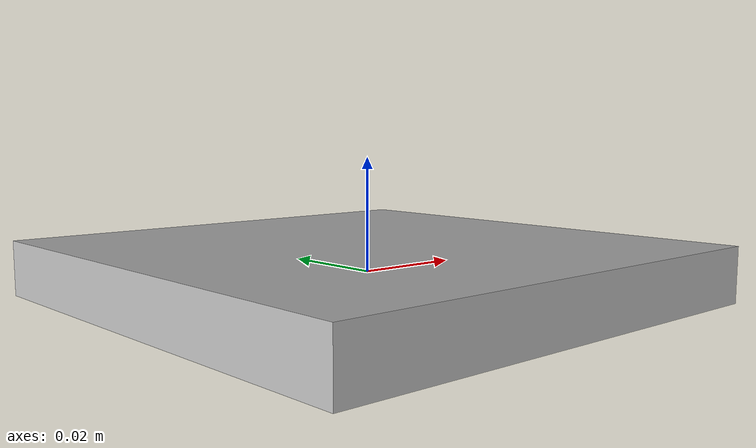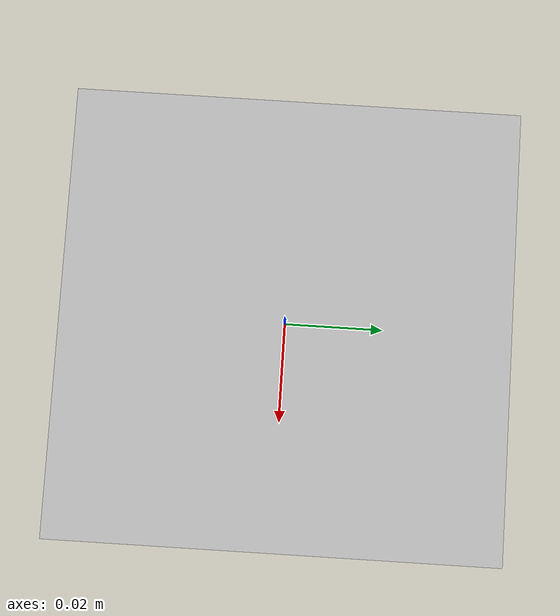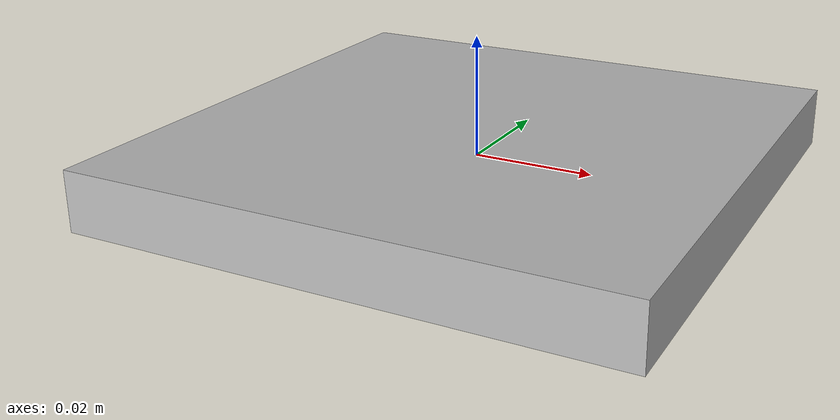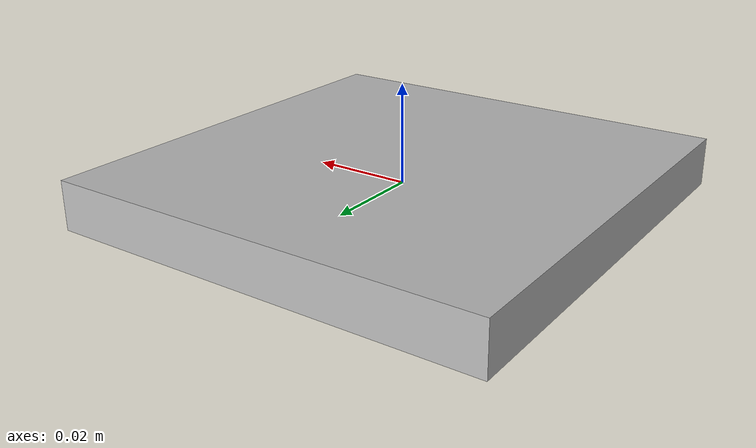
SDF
<?xml version='1.0'?>
<sdf version='1.5'>
  <model name='ar_tag3'>
    <static>true</static>
    <link name="tag3_link">

        <visual name="visual_ar_tag3">
        <geometry>
                <mesh>
                    <uri>model://AR_tag3/meshes/ar_tag3.dae</uri>
                </mesh>
            </geometry>
        </visual>
         <collision name="collision_ar_tag1">
                <geometry>
                <mesh>
                    <uri>model://AR_tag3/meshes/ar_tag3.dae</uri>
                </mesh>
            </geometry>
        </collision>

    </link>
  </model>
</sdf>
~
